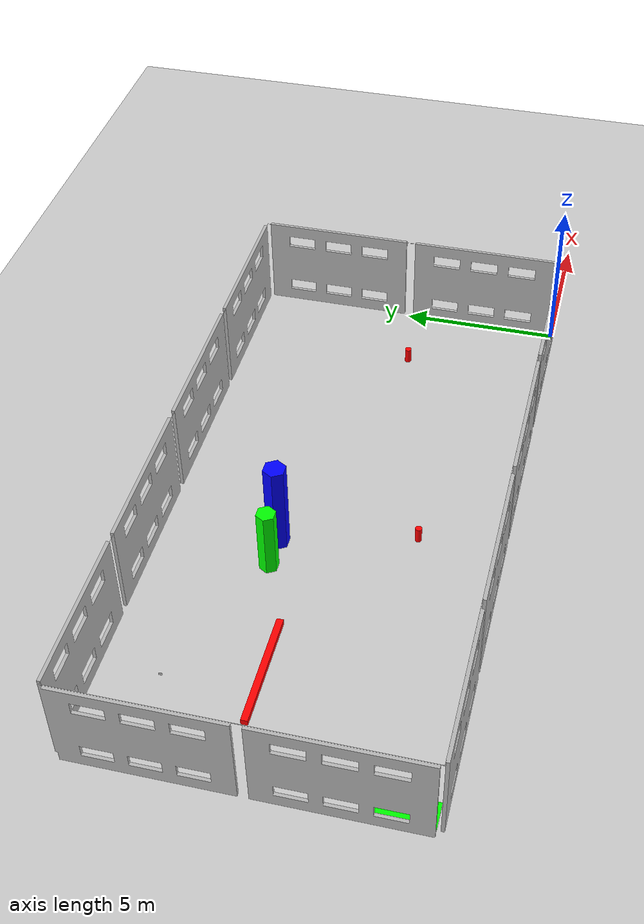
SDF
<?xml version="1.0" ?>
<sdf version="1.5">
  <world name="rl_race_field">
        <!-- A ground plane -->
    <include>
      <uri>model://ground_plane</uri>
    </include>
    <physics name='default_physics' default='0' type='ode'>
      <gravity>0 0 -9.8066</gravity>
      <ode>
        <solver>
          <type>quick</type>
          <iters>10</iters>
          <sor>1.3</sor>
          <use_dynamic_moi_rescaling>0</use_dynamic_moi_rescaling>
        </solver>
        <constraints>
          <cfm>0</cfm>
          <erp>0.2</erp>
          <contact_max_correcting_vel>100</contact_max_correcting_vel>
          <contact_surface_layer>0.001</contact_surface_layer>
        </constraints>
      </ode>
      <max_step_size>0.004</max_step_size>
      <real_time_factor>1</real_time_factor>
      <real_time_update_rate>100</real_time_update_rate>
      <magnetic_field>6.0e-6 2.3e-5 -4.2e-5</magnetic_field>
    </physics>

    <include>
      <uri>model://sun</uri>
    </include>

    <!-- Race field -->

    <!-- Roof -->
     <include>
      <name>roof</name>
      <pose> 0 0 3.1 3.14159 0 3.14159 </pose>
      <uri>model://roof</uri>
    </include>

    <!-- Static Obstacles-->
    <include>
      <name>obstacle_03</name>
      <pose> -7.198 6.684 0.1 0 0 -1.57 </pose>
      <uri>model://obstacle_03</uri>
    </include>

    <include>
      <name>obstacle_03_second</name>
      <pose> -5 3.58 0.1 0 0 1.57 </pose>
      <uri>model://obstacle_03</uri>
    </include>

    <include>
      <name>obstacle_09</name>
      <pose> -17 9 0.1 0 0 3.14159</pose>
      <uri>model://obstacle_09</uri>
    </include>

    <include>
      <name>obstacle_06</name>
      <pose> -3.153 6.881 0.1 0 0 0</pose>
      <uri>model://obstacle_06</uri>
    </include>

    <include>
      <name>obstacle_10_</name>
      <pose> -3.30 1.60 0.10 0 0 3.14159</pose>
      <uri>model://obstacle_10_</uri>
    </include>

    <!-- Unknown Obstacles-->
    <include>
      <name>unknown_obst_1</name> <!--high tower-->
      <pose> -11.5 6.5 0.1 0 0 0</pose>
      <uri>model://unknown_obst_1</uri>
    </include>

    <include>
      <name>unknown_obst_2</name> <!--low tower-->
      <pose> -12.5 6.5 0.1 0 0 0</pose>
      <uri>model://unknown_obst_2</uri>
    </include>

    <include>
      <name>unknown_obst_3 </name> <!--low tower-->
      <pose> -18 5.5 0.1 0 0 0</pose>
      <uri>model://unknown_obst_3</uri>
    </include>

    <include>
      <name>unknown_tunnel_1 </name> <!--low tower-->
      <pose> -13.2 3.5 0.1 0 0 2.355 </pose>
      <uri>model://unknown_tunnel_1</uri>
    </include>

    <include>
      <name>unknown_tunnel_2 </name> <!--low tower-->
      <pose> -12 8.5 0.1 0 0 -1.57 </pose>
      <uri>model://unknown_tunnel_2</uri>
    </include>

    <include>
      <name>start_pod </name> <!--low tower-->
      <pose> -19.9 0.1 0.1 0 0 0 </pose>
      <uri>model://start_pod</uri>
    </include>

    <!-- Intruders -->
    <include>
      <name>intruder_one</name>
      <pose> -2.5 4.5 0.1 0 0 0</pose>
      <uri>model://intruder</uri>
    </include>

    <include>
      <name>intruder_two</name>
      <pose> -10.5 2.5 0.1 0 0 0</pose>
      <uri>model://intruder</uri>
    </include>

    <!-- AR markers -->
    <include>
      <name>tool_0_tag</name>
      <uri>model://marker_115</uri>
      <pose>-17 8.25 0.2 3.14 -1.57 0</pose>
    </include>

  </world>
</sdf>

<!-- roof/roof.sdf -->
<sdf version="1.5">
  <model name="roof">
    <static>true</static>
    <link name="link">
      <pose>0 0 0 0 0 0</pose>
      <collision name="collision">
        <geometry>
            <mesh>
              <uri>
                model://roof/mesh/roof.stl
              </uri>
              <scale>
                0.001 0.001 0.001
              </scale>
            </mesh>
        </geometry>
      </collision>
      <visual name="visual">
        <cast_shadows>true</cast_shadows>
        <geometry>
            <mesh>
              <uri>
                model://roof/mesh/roof.stl
              </uri>
              <scale>
                0.001 0.001 0.001
              </scale>
            </mesh>
        </geometry>
        <material>Gazebo/DarkGray</material>
      </visual>
    </link>
  </model>
</sdf>

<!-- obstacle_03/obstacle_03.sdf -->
<sdf version="1.5">
  <model name="obstacle_03">
    <static>true</static>
    <link name="link">
      <pose>0 0 0 0 0 0</pose>
      <collision name="collision">
        <geometry>
            <mesh>
              <uri>
                model://obstacle_03/mesh/ostacolo_03.stl
              </uri>
              <scale>
                0.001 0.001 0.001
              </scale>
            </mesh>
        </geometry>
      </collision>
      <visual name="visual">
        <cast_shadows>true</cast_shadows>
        <geometry>
            <mesh>
              <uri>
                model://obstacle_03/mesh/ostacolo_03.stl
              </uri>
              <scale>
                0.001 0.001 0.001
              </scale>
            </mesh>
        </geometry>
        <material> <!-- color violet -->
          <ambient>172 68 217 1</ambient>
          <diffuse>172 68 217 1</diffuse>
          <specular>0 0 0 0</specular>
          <emissive>0 0 0 1</emissive>
        </material>
      </visual>
    </link>
  </model>
</sdf>

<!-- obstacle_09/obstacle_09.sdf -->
<sdf version="1.5">
  <model name="obstacle_09">
    <static>true</static>
    <link name="link">
      <pose>0 0 0 0 0 0</pose>
      <collision name="collision">
        <geometry>
            <mesh>
              <uri>
                model://obstacle_09/mesh/ostacolo_09.stl
              </uri>
              <scale>
                0.001 0.001 0.001
              </scale>
            </mesh>
        </geometry>
      </collision>
      <visual name="visual">
        <cast_shadows>true</cast_shadows>
        <geometry>
            <mesh>
              <uri>
                model://obstacle_09/mesh/ostacolo_09.stl
              </uri>
              <scale>
                0.001 0.001 0.001
              </scale>
            </mesh>
        </geometry>
        <material> <!-- color yellow -->
          <ambient>232 230 75 1</ambient>
          <diffuse>232 230 75 1</diffuse>
          <specular>0 0 0 0</specular>
          <emissive>0 0 0 1</emissive>
        </material>
      </visual>
    </link>
  </model>
</sdf>

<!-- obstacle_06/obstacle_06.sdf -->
<sdf version="1.5">
  <model name="obstacle_06">
    <static>true</static>
    <link name="link">
      <pose>0 0 0 0 0 0</pose>
      <collision name="collision">
        <geometry>
            <mesh>
              <uri>
                model://obstacle_06/mesh/ostacolo_06.stl
              </uri>
              <scale>
                0.001 0.001 0.001
              </scale>
            </mesh>
        </geometry>
      </collision>
      <visual name="visual">
        <cast_shadows>true</cast_shadows>
        <geometry>
            <mesh>
              <uri>
                model://obstacle_06/mesh/ostacolo_06.stl
              </uri>
              <scale>
                0.001 0.001 0.001
              </scale>
            </mesh>
        </geometry>
        <material> <!-- color cyan -->
          <ambient>75 227 232 1</ambient>
          <diffuse>75 227 232 1</diffuse>
          <specular>0 0 0 0</specular>
          <emissive>0 0 0 1</emissive>
        </material>
      </visual>
    </link>
  </model>
</sdf>

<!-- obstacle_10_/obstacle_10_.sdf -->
<sdf version="1.5">
  <model name="obstacle_10_">
    <static>true</static>
    <link name="link">
      <pose>0 0 0 0 0 0</pose>
      <collision name="collision">
        <geometry>
            <mesh>
              <uri>
                model://obstacle_10_/mesh/ostacolo_10_.stl
              </uri>
              <scale>
                0.01 0.01 0.01
              </scale>
            </mesh>
        </geometry>
      </collision>
      <visual name="visual">
        <cast_shadows>true</cast_shadows>
        <geometry>
            <mesh>
              <uri>
                model://obstacle_10_/mesh/ostacolo_10_.stl
              </uri>
              <scale>
                0.01 0.01 0.01
              </scale>
            </mesh>
        </geometry>
        <material> <!-- color soft yellow -->
          <ambient>248 247 178 1</ambient>
          <diffuse>248 247 178 1</diffuse>
          <specular>0 0 0 0</specular>
          <emissive>0 0 0 1</emissive>
        </material>
      </visual>
    </link>
  </model>
</sdf>

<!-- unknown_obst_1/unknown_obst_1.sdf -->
<sdf version="1.5">
  <model name="unknown_obst_1">
    <static>true</static>
    <link name="link">
      <pose>0 0 0 0 0 0</pose>
      <collision name="collision">
        <geometry>
            <mesh>
              <uri>
                model://unknown_obst_1/mesh/unknown_obst_high.stl
              </uri>
              <scale>
                0.001 0.001 0.001
              </scale>
            </mesh>
        </geometry>
      </collision>
      <visual name="visual">
        <cast_shadows>true</cast_shadows>
        <geometry>
            <mesh>
              <uri>
                model://unknown_obst_1/mesh/unknown_obst_high.stl
              </uri>
              <scale>
                0.001 0.001 0.001
              </scale>
            </mesh>
        </geometry>
        <material> <!-- color soft yellow -->
          <ambient>0 0 1 1</ambient>
          <diffuse>0 0 1 1</diffuse>
          <specular>0 0 0 0</specular>
          <emissive>0 0 0 1</emissive>
        </material>
      </visual>
    </link>
  </model>
</sdf>

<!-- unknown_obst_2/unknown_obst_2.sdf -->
<sdf version="1.5">
  <model name="unknown_obst_2">
    <static>true</static>
    <link name="link">
      <pose>0 0 0 0 0 0</pose>
      <collision name="collision">
        <geometry>
            <mesh>
              <uri>
                model://unknown_obst_2/mesh/unknown_obst_low.stl
              </uri>
              <scale>
                0.001 0.001 0.001
              </scale>
            </mesh>
        </geometry>
      </collision>
      <visual name="visual">
        <cast_shadows>true</cast_shadows>
        <geometry>
            <mesh>
              <uri>
                model://unknown_obst_2/mesh/unknown_obst_low.stl
              </uri>
              <scale>
                0.001 0.001 0.001
              </scale>
            </mesh>
        </geometry>
        <material> <!-- color soft yellow -->
          <ambient>0 1 0 1</ambient>
          <diffuse>0 1 0 1</diffuse>
          <specular>0 0 0 0</specular>
          <emissive>0 0 0 1</emissive>
        </material>
      </visual>
    </link>
  </model>
</sdf>

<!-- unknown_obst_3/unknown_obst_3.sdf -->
<sdf version="1.5">
  <model name="unknown_obst_3">
    <static>true</static>
    <link name="link">
      <pose>0 0 0 0 0 0</pose>
      <collision name="collision">
        <geometry>
            <mesh>
              <uri>
                model://unknown_obst_3/mesh/unknown_obst_wall.stl
              </uri>
              <scale>
                0.001 0.001 0.001
              </scale>
            </mesh>
        </geometry>
      </collision>
      <visual name="visual">
        <cast_shadows>true</cast_shadows>
        <geometry>
            <mesh>
              <uri>
                model://unknown_obst_3/mesh/unknown_obst_wall.stl
              </uri>
              <scale>
                0.001 0.001 0.001
              </scale>
            </mesh>
        </geometry>
        <material> <!-- color red -->
          <ambient>1 0 0 1</ambient>
          <diffuse>1 0 0 1</diffuse>
          <specular>0 0 0 0</specular>
          <emissive>0 0 0 1</emissive>
        </material>
      </visual>
    </link>
  </model>
</sdf>

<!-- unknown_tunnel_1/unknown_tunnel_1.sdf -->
<sdf version="1.5">
  <model name="unknown_tunnel_1">
    <static>true</static>
    <link name="link">
      <pose>0 0 0 0 0 0</pose>
      <collision name="collision">
        <geometry>
            <mesh>
              <uri>
                model://unknown_tunnel_1/mesh/tunnel_long.stl
              </uri>
              <scale>
                0.001 0.001 0.001
              </scale>
            </mesh>
        </geometry>
      </collision>
      <visual name="visual">
        <cast_shadows>true</cast_shadows>
        <geometry>
            <mesh>
              <uri>
                model://unknown_tunnel_1/mesh/tunnel_long.stl
              </uri>
              <scale>
                0.001 0.001 0.001
              </scale>
            </mesh>
        </geometry>
        <material> <!-- color white -->
          <ambient>231 245 243 1</ambient>
          <diffuse>231 245 243 1</diffuse>
          <specular>0 0 0 0</specular>
          <emissive>0 0 0 1</emissive>
        </material>
      </visual>
    </link>
  </model>
</sdf>

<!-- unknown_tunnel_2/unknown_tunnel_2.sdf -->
<sdf version="1.5">
  <model name="unknown_tunnel_2">
    <static>true</static>
    <link name="link">
      <pose>0 0 0 0 0 0</pose>
      <collision name="collision">
        <geometry>
            <mesh>
              <uri>
                model://unknown_tunnel_2/mesh/tunnel_short.stl
              </uri>
              <scale>
                0.001 0.001 0.001
              </scale>
            </mesh>
        </geometry>
      </collision>
      <visual name="visual">
        <cast_shadows>true</cast_shadows>
        <geometry>
            <mesh>
              <uri>
                model://unknown_tunnel_2/mesh/tunnel_short.stl
              </uri>
              <scale>
                0.001 0.001 0.001
              </scale>
            </mesh>
        </geometry>
        <material> <!-- color white -->
          <ambient>231 245 243 1</ambient>
          <diffuse>231 245 243 1</diffuse>
          <specular>0 0 0 0</specular>
          <emissive>0 0 0 1</emissive>
        </material>
      </visual>
    </link>
  </model>
</sdf>

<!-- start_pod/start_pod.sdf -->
<sdf version="1.5">
  <model name="start_pod">
    <static>true</static>
    <link name="link">
      <pose>0 0 0 0 0 0</pose>
      <collision name="collision">
        <geometry>
            <mesh>
              <uri>
                model://start_pod/mesh/start_pod.stl
              </uri>
              <scale>
                0.001 0.001 0.001
              </scale>
            </mesh>
        </geometry>
      </collision>
      <visual name="visual">
        <cast_shadows>true</cast_shadows>
        <geometry>
            <mesh>
              <uri>
                model://start_pod/mesh/start_pod.stl
              </uri>
              <scale>
                0.001 0.001 0.001
              </scale>
            </mesh>
        </geometry>
        <material> <!-- color white -->
          <ambient>0 1 0 1</ambient>
          <diffuse>0 1 0 1</diffuse>
          <specular>0 0 0 0</specular>
          <emissive>0 0 0 1</emissive>
        </material>
      </visual>
    </link>
  </model>
</sdf>

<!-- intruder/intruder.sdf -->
<sdf version="1.5">
  <model name="intruder">
    <static>true</static>
    <link name="link">
      <pose>0 0 0 0 0 0</pose>
      <collision name="collision">
        <geometry>
            <mesh>
              <uri>
                model://intruder/mesh/intruder.stl
              </uri>
              <scale>
                0.001 0.001 0.001
              </scale>
            </mesh>
        </geometry>
      </collision>
      <visual name="visual">
        <cast_shadows>true</cast_shadows>
        <geometry>
            <mesh>
              <uri>
                model://intruder/mesh/intruder.stl
              </uri>
              <scale>
                0.001 0.001 0.001
              </scale>
            </mesh>
        </geometry>
        <material> <!-- color soft yellow -->
          <ambient>1 0 0 1</ambient>
          <diffuse>1 0 0 1</diffuse>
          <specular>0 0 0 0</specular>
          <emissive>0 0 0 1</emissive>
        </material>
      </visual>
    </link>
  </model>
</sdf>

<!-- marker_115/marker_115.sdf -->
<sdf version="1.4">
  <model name="marker_115">
    <static>true</static>
    <link name="marker">
      <gravity>false</gravity>

      <visual name="front_visual">
        <pose>0 0 0.0005 0 0 0</pose>
        <geometry>
          <box>
           <size>0.10 0.10 0.001</size>
         </box>
        </geometry>
        <material>
          <script>
           <uri>model://marker_115/material/scripts</uri>
            <uri>model://marker_115/material/textures</uri>
            <name>marker_115</name>
          </script>
        </material>
      </visual>

      <!-- Hide the marker from the back -->
      <visual name="rear_visual">
        <pose>0 0 -0.0005 0 0 0</pose>
        <geometry>
          <box>
            <size>0.10 0.10 0.001</size>
          </box>
        </geometry>
      </visual>

      <collision name="collision">
        <geometry>
          <box>
            <size>0.10 0.10 0.001</size>
          </box>
        </geometry>
      </collision>
    </link>
  </model>
</sdf>
